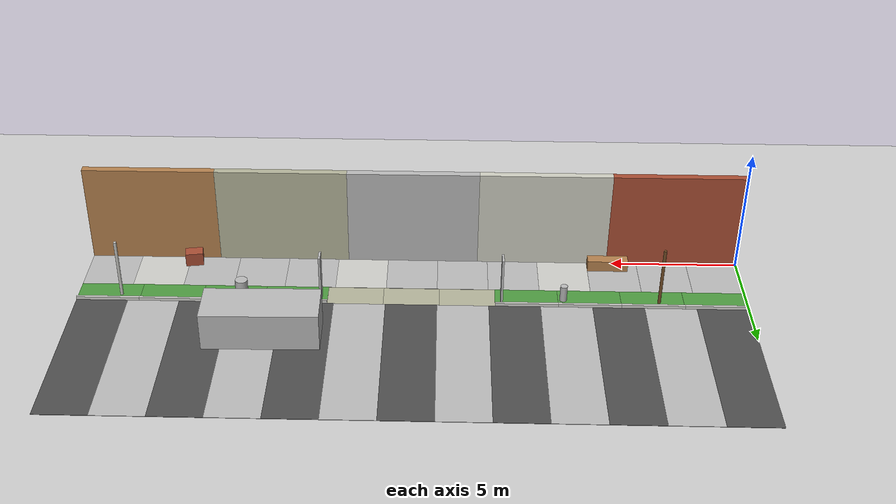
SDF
<?xml version="1.0" ?>
<sdf version="1.6">
  <world name="marc_sidewalk_driveway">

    <include>
      <uri>model://sun</uri>
    </include>

    <include>
      <uri>model://ground_plane</uri>
    </include>

    <physics type="ode">
      <max_step_size>0.001</max_step_size>
      <real_time_factor>1</real_time_factor>
      <real_time_update_rate>1000</real_time_update_rate>
    </physics>

    <model name="walkway">
      <static>true</static>
      <link name="link">
        <collision name="collision">
          <pose>13 1.0 0.01 0 0 0</pose>
          <geometry><box><size>26 2.0 0.02</size></box></geometry>
        </collision>

        <visual name="w01"><pose>1 1.0 0.011 0 0 0</pose><geometry><box><size>2 2.0 0.02</size></box></geometry>
          <material><script><uri>file://media/materials/scripts/gazebo.material</uri><name>Gazebo/Pedestrian</name></script></material></visual>
        <visual name="w02"><pose>3 1.0 0.011 0 0 0</pose><geometry><box><size>2 2.0 0.02</size></box></geometry>
          <material><script><uri>file://media/materials/scripts/gazebo.material</uri><name>Gazebo/Steps</name></script></material></visual>
        <visual name="w03"><pose>5 1.0 0.011 0 0 0</pose><geometry><box><size>2 2.0 0.02</size></box></geometry>
          <material><script><uri>file://media/materials/scripts/gazebo.material</uri><name>Gazebo/Pedestrian</name></script></material></visual>
        <visual name="w04"><pose>7 1.0 0.011 0 0 0</pose><geometry><box><size>2 2.0 0.02</size></box></geometry>
          <material><script><uri>file://media/materials/scripts/gazebo.material</uri><name>Gazebo/CeilingTiled</name></script></material></visual>
        <visual name="w05"><pose>9 1.0 0.011 0 0 0</pose><geometry><box><size>2 2.0 0.02</size></box></geometry>
          <material><script><uri>file://media/materials/scripts/gazebo.material</uri><name>Gazebo/Pedestrian</name></script></material></visual>
        <visual name="w06"><pose>11 1.0 0.011 0 0 0</pose><geometry><box><size>2 2.0 0.02</size></box></geometry>
          <material><script><uri>file://media/materials/scripts/gazebo.material</uri><name>Gazebo/Steps</name></script></material></visual>
        <visual name="w07"><pose>13 1.0 0.011 0 0 0</pose><geometry><box><size>2 2.0 0.02</size></box></geometry>
          <material><script><uri>file://media/materials/scripts/gazebo.material</uri><name>Gazebo/Pedestrian</name></script></material></visual>
        <visual name="w08"><pose>15 1.0 0.011 0 0 0</pose><geometry><box><size>2 2.0 0.02</size></box></geometry>
          <material><script><uri>file://media/materials/scripts/gazebo.material</uri><name>Gazebo/CeilingTiled</name></script></material></visual>
        <visual name="w09"><pose>17 1.0 0.011 0 0 0</pose><geometry><box><size>2 2.0 0.02</size></box></geometry>
          <material><script><uri>file://media/materials/scripts/gazebo.material</uri><name>Gazebo/Pedestrian</name></script></material></visual>
        <visual name="w10"><pose>19 1.0 0.011 0 0 0</pose><geometry><box><size>2 2.0 0.02</size></box></geometry>
          <material><script><uri>file://media/materials/scripts/gazebo.material</uri><name>Gazebo/Steps</name></script></material></visual>
        <visual name="w11"><pose>21 1.0 0.011 0 0 0</pose><geometry><box><size>2 2.0 0.02</size></box></geometry>
          <material><script><uri>file://media/materials/scripts/gazebo.material</uri><name>Gazebo/Pedestrian</name></script></material></visual>
        <visual name="w12"><pose>23 1.0 0.011 0 0 0</pose><geometry><box><size>2 2.0 0.02</size></box></geometry>
          <material><script><uri>file://media/materials/scripts/gazebo.material</uri><name>Gazebo/CeilingTiled</name></script></material></visual>
        <visual name="w13"><pose>25 1.0 0.011 0 0 0</pose><geometry><box><size>2 2.0 0.02</size></box></geometry>
          <material><script><uri>file://media/materials/scripts/gazebo.material</uri><name>Gazebo/Pedestrian</name></script></material></visual>
      </link>
    </model>

    <!-- ==== BUFFER ZONE ==== 1.0 m of grass, split either side of the cut -->
    <model name="buffer_zone_west">
      <static>true</static>
      <link name="link">
        <collision name="collision"><pose>4.875 2.5 0.01 0 0 0</pose>
          <geometry><box><size>9.75 1.0 0.02</size></box></geometry></collision>
        <visual name="bw1"><pose>1.22 2.5 0.011 0 0 0</pose><geometry><box><size>2.44 1.0 0.02</size></box></geometry>
          <material><script><uri>file://media/materials/scripts/gazebo.material</uri><name>Gazebo/Grass</name></script></material></visual>
        <visual name="bw2"><pose>3.66 2.5 0.011 0 0 0</pose><geometry><box><size>2.44 1.0 0.02</size></box></geometry>
          <material><script><uri>file://media/materials/scripts/gazebo.material</uri><name>Gazebo/Grass</name></script></material></visual>
        <visual name="bw3"><pose>6.09 2.5 0.011 0 0 0</pose><geometry><box><size>2.44 1.0 0.02</size></box></geometry>
          <material><script><uri>file://media/materials/scripts/gazebo.material</uri><name>Gazebo/Grass</name></script></material></visual>
        <visual name="bw4"><pose>8.53 2.5 0.011 0 0 0</pose><geometry><box><size>2.44 1.0 0.02</size></box></geometry>
          <material><script><uri>file://media/materials/scripts/gazebo.material</uri><name>Gazebo/Grass</name></script></material></visual>
      </link>
    </model>

    <model name="buffer_zone_east">
      <static>true</static>
      <link name="link">
        <collision name="collision"><pose>21.125 2.5 0.01 0 0 0</pose>
          <geometry><box><size>9.75 1.0 0.02</size></box></geometry></collision>
        <visual name="be1"><pose>17.47 2.5 0.011 0 0 0</pose><geometry><box><size>2.44 1.0 0.02</size></box></geometry>
          <material><script><uri>file://media/materials/scripts/gazebo.material</uri><name>Gazebo/Grass</name></script></material></visual>
        <visual name="be2"><pose>19.91 2.5 0.011 0 0 0</pose><geometry><box><size>2.44 1.0 0.02</size></box></geometry>
          <material><script><uri>file://media/materials/scripts/gazebo.material</uri><name>Gazebo/Grass</name></script></material></visual>
        <visual name="be3"><pose>22.34 2.5 0.011 0 0 0</pose><geometry><box><size>2.44 1.0 0.02</size></box></geometry>
          <material><script><uri>file://media/materials/scripts/gazebo.material</uri><name>Gazebo/Grass</name></script></material></visual>
        <visual name="be4"><pose>24.78 2.5 0.011 0 0 0</pose><geometry><box><size>2.44 1.0 0.02</size></box></geometry>
          <material><script><uri>file://media/materials/scripts/gazebo.material</uri><name>Gazebo/Grass</name></script></material></visual>
      </link>
    </model>

    <model name="curb_west">
      <static>true</static>
      <link name="link">
        <collision name="collision"><pose>4.875 3.05 0.075 0 0 0</pose>
          <geometry><box><size>9.75 0.1 0.15</size></box></geometry></collision>
        <visual name="cw1"><pose>1.22 3.05 0.075 0 0 0</pose><geometry><box><size>2.44 0.1 0.15</size></box></geometry>
          <material><script><uri>file://media/materials/scripts/gazebo.material</uri><name>Gazebo/CeilingTiled</name></script></material></visual>
        <visual name="cw2"><pose>3.66 3.05 0.075 0 0 0</pose><geometry><box><size>2.44 0.1 0.15</size></box></geometry>
          <material><script><uri>file://media/materials/scripts/gazebo.material</uri><name>Gazebo/CeilingTiled</name></script></material></visual>
        <visual name="cw3"><pose>6.09 3.05 0.075 0 0 0</pose><geometry><box><size>2.44 0.1 0.15</size></box></geometry>
          <material><script><uri>file://media/materials/scripts/gazebo.material</uri><name>Gazebo/CeilingTiled</name></script></material></visual>
        <visual name="cw4"><pose>8.53 3.05 0.075 0 0 0</pose><geometry><box><size>2.44 0.1 0.15</size></box></geometry>
          <material><script><uri>file://media/materials/scripts/gazebo.material</uri><name>Gazebo/CeilingTiled</name></script></material></visual>
      </link>
    </model>

    <model name="curb_east">
      <static>true</static>
      <link name="link">
        <collision name="collision"><pose>21.125 3.05 0.075 0 0 0</pose>
          <geometry><box><size>9.75 0.1 0.15</size></box></geometry></collision>
        <visual name="ce1"><pose>17.47 3.05 0.075 0 0 0</pose><geometry><box><size>2.44 0.1 0.15</size></box></geometry>
          <material><script><uri>file://media/materials/scripts/gazebo.material</uri><name>Gazebo/CeilingTiled</name></script></material></visual>
        <visual name="ce2"><pose>19.91 3.05 0.075 0 0 0</pose><geometry><box><size>2.44 0.1 0.15</size></box></geometry>
          <material><script><uri>file://media/materials/scripts/gazebo.material</uri><name>Gazebo/CeilingTiled</name></script></material></visual>
        <visual name="ce3"><pose>22.34 3.05 0.075 0 0 0</pose><geometry><box><size>2.44 0.1 0.15</size></box></geometry>
          <material><script><uri>file://media/materials/scripts/gazebo.material</uri><name>Gazebo/CeilingTiled</name></script></material></visual>
        <visual name="ce4"><pose>24.78 3.05 0.075 0 0 0</pose><geometry><box><size>2.44 0.1 0.15</size></box></geometry>
          <material><script><uri>file://media/materials/scripts/gazebo.material</uri><name>Gazebo/CeilingTiled</name></script></material></visual>
      </link>
    </model>

    <model name="driveway_apron">
      <static>true</static>
      <link name="link">
        <collision name="collision"><pose>13 2.55 0.005 0 0 0</pose>
          <geometry><box><size>6.5 1.1 0.01</size></box></geometry></collision>
        <visual name="da1"><pose>10.83 2.55 0.006 0 0 0</pose><geometry><box><size>2.17 1.1 0.01</size></box></geometry>
          <material><script><uri>file://media/materials/scripts/gazebo.material</uri><name>Gazebo/Residential</name></script></material></visual>
        <visual name="da2"><pose>13 2.55 0.006 0 0 0</pose><geometry><box><size>2.17 1.1 0.01</size></box></geometry>
          <material><script><uri>file://media/materials/scripts/gazebo.material</uri><name>Gazebo/Residential</name></script></material></visual>
        <visual name="da3"><pose>15.17 2.55 0.006 0 0 0</pose><geometry><box><size>2.17 1.1 0.01</size></box></geometry>
          <material><script><uri>file://media/materials/scripts/gazebo.material</uri><name>Gazebo/Residential</name></script></material></visual>
      </link>
    </model>

    <!-- ==== ROADWAY ==== context slab beyond the curb, tiled and alternating -->
    <model name="roadway">
      <static>true</static>
      <link name="link">
        <collision name="collision"><pose>13 6.55 0.01 0 0 0</pose>
          <geometry><box><size>26 6.9 0.02</size></box></geometry></collision>
        <visual name="r01"><pose>1 6.55 0.011 0 0 0</pose><geometry><box><size>2 6.9 0.02</size></box></geometry>
          <material><script><uri>file://media/materials/scripts/gazebo.material</uri><name>Gazebo/Road</name></script></material></visual>
        <visual name="r02"><pose>3 6.55 0.011 0 0 0</pose><geometry><box><size>2 6.9 0.02</size></box></geometry>
          <material><script><uri>file://media/materials/scripts/gazebo.material</uri><name>Gazebo/Motorway</name></script></material></visual>
        <visual name="r03"><pose>5 6.55 0.011 0 0 0</pose><geometry><box><size>2 6.9 0.02</size></box></geometry>
          <material><script><uri>file://media/materials/scripts/gazebo.material</uri><name>Gazebo/Road</name></script></material></visual>
        <visual name="r04"><pose>7 6.55 0.011 0 0 0</pose><geometry><box><size>2 6.9 0.02</size></box></geometry>
          <material><script><uri>file://media/materials/scripts/gazebo.material</uri><name>Gazebo/Motorway</name></script></material></visual>
        <visual name="r05"><pose>9 6.55 0.011 0 0 0</pose><geometry><box><size>2 6.9 0.02</size></box></geometry>
          <material><script><uri>file://media/materials/scripts/gazebo.material</uri><name>Gazebo/Road</name></script></material></visual>
        <visual name="r06"><pose>11 6.55 0.011 0 0 0</pose><geometry><box><size>2 6.9 0.02</size></box></geometry>
          <material><script><uri>file://media/materials/scripts/gazebo.material</uri><name>Gazebo/Motorway</name></script></material></visual>
        <visual name="r07"><pose>13 6.55 0.011 0 0 0</pose><geometry><box><size>2 6.9 0.02</size></box></geometry>
          <material><script><uri>file://media/materials/scripts/gazebo.material</uri><name>Gazebo/Road</name></script></material></visual>
        <visual name="r08"><pose>15 6.55 0.011 0 0 0</pose><geometry><box><size>2 6.9 0.02</size></box></geometry>
          <material><script><uri>file://media/materials/scripts/gazebo.material</uri><name>Gazebo/Motorway</name></script></material></visual>
        <visual name="r09"><pose>17 6.55 0.011 0 0 0</pose><geometry><box><size>2 6.9 0.02</size></box></geometry>
          <material><script><uri>file://media/materials/scripts/gazebo.material</uri><name>Gazebo/Road</name></script></material></visual>
        <visual name="r10"><pose>19 6.55 0.011 0 0 0</pose><geometry><box><size>2 6.9 0.02</size></box></geometry>
          <material><script><uri>file://media/materials/scripts/gazebo.material</uri><name>Gazebo/Motorway</name></script></material></visual>
        <visual name="r11"><pose>21 6.55 0.011 0 0 0</pose><geometry><box><size>2 6.9 0.02</size></box></geometry>
          <material><script><uri>file://media/materials/scripts/gazebo.material</uri><name>Gazebo/Road</name></script></material></visual>
        <visual name="r12"><pose>23 6.55 0.011 0 0 0</pose><geometry><box><size>2 6.9 0.02</size></box></geometry>
          <material><script><uri>file://media/materials/scripts/gazebo.material</uri><name>Gazebo/Motorway</name></script></material></visual>
        <visual name="r13"><pose>25 6.55 0.011 0 0 0</pose><geometry><box><size>2 6.9 0.02</size></box></geometry>
          <material><script><uri>file://media/materials/scripts/gazebo.material</uri><name>Gazebo/Road</name></script></material></visual>
      </link>
    </model>

    <model name="building_wall">
      <static>true</static>
      <link name="link">
        <collision name="collision"><pose>13 -0.15 2.0 0 0 0</pose>
          <geometry><box><size>26 0.3 4.0</size></box></geometry></collision>
        <visual name="f1"><pose>2.6 -0.15 2.0 0 0 0</pose><geometry><box><size>5.2 0.3 4.0</size></box></geometry>
          <material><script><uri>file://media/materials/scripts/gazebo.material</uri><name>Gazebo/Bricks</name></script></material></visual>
        <visual name="f2"><pose>7.8 -0.15 2.0 0 0 0</pose><geometry><box><size>5.2 0.3 4.0</size></box></geometry>
          <material><script><uri>file://media/materials/scripts/gazebo.material</uri><name>Gazebo/PaintedWall</name></script></material></visual>
        <visual name="f3"><pose>13 -0.15 2.0 0 0 0</pose><geometry><box><size>5.2 0.3 4.0</size></box></geometry>
          <material><script><uri>file://media/materials/scripts/gazebo.material</uri><name>Gazebo/BuildingFrame</name></script></material></visual>
        <visual name="f4"><pose>18.2 -0.15 2.0 0 0 0</pose><geometry><box><size>5.2 0.3 4.0</size></box></geometry>
          <material><script><uri>file://media/materials/scripts/gazebo.material</uri><name>Gazebo/Residential</name></script></material></visual>
        <visual name="f5"><pose>23.4 -0.15 2.0 0 0 0</pose><geometry><box><size>5.2 0.3 4.0</size></box></geometry>
          <material><script><uri>file://media/materials/scripts/gazebo.material</uri><name>Gazebo/Wood</name></script></material></visual>
      </link>
    </model>

    <model name="pole_w"><static>true</static><pose>3.4 2.72 1.22 0 0 0</pose>
      <link name="l"><collision name="c"><geometry><cylinder><radius>0.06</radius><length>2.4</length></cylinder></geometry></collision>
        <visual name="v"><geometry><cylinder><radius>0.06</radius><length>2.4</length></cylinder></geometry>
          <material><script><uri>file://media/materials/scripts/gazebo.material</uri><name>Gazebo/Trunk</name></script></material></visual></link></model>

    <model name="bench_w"><static>true</static><pose>5.2 0.36 0.245 0 0 0</pose>
      <link name="l"><collision name="c"><geometry><box><size>1.6 0.45 0.45</size></box></geometry></collision>
        <visual name="v"><geometry><box><size>1.6 0.45 0.45</size></box></geometry>
          <material><script><uri>file://media/materials/scripts/gazebo.material</uri><name>Gazebo/Wood</name></script></material></visual></link></model>

    <model name="hydrant"><static>true</static><pose>7.1 2.62 0.345 0 0 0</pose>
      <link name="l"><collision name="c"><geometry><cylinder><radius>0.14</radius><length>0.65</length></cylinder></geometry></collision>
        <visual name="v"><geometry><cylinder><radius>0.14</radius><length>0.65</length></cylinder></geometry>
          <material><script><uri>file://media/materials/scripts/gazebo.material</uri><name>Gazebo/Steps</name></script></material></visual></link></model>

    <!-- signs flanking the driveway cut == the strongest place-signature on
         the route, and the thing a returning pass should recognise -->
    <model name="sign_dw_west"><static>true</static><pose>9.5 2.75 1.02 0 0 0</pose>
      <link name="l"><collision name="c"><geometry><box><size>0.08 0.5 2.0</size></box></geometry></collision>
        <visual name="v"><geometry><box><size>0.08 0.5 2.0</size></box></geometry>
          <material><script><uri>file://media/materials/scripts/gazebo.material</uri><name>Gazebo/Runway</name></script></material></visual></link></model>

    <model name="sign_dw_east"><static>true</static><pose>16.5 2.75 1.02 0 0 0</pose>
      <link name="l"><collision name="c"><geometry><box><size>0.08 0.5 2.0</size></box></geometry></collision>
        <visual name="v"><geometry><box><size>0.08 0.5 2.0</size></box></geometry>
          <material><script><uri>file://media/materials/scripts/gazebo.material</uri><name>Gazebo/Primary</name></script></material></visual></link></model>

    <model name="bin_e"><static>true</static><pose>19.6 2.6 0.37 0 0 0.4</pose>
      <link name="l"><collision name="c"><geometry><cylinder><radius>0.24</radius><length>0.7</length></cylinder></geometry></collision>
        <visual name="v"><geometry><cylinder><radius>0.24</radius><length>0.7</length></cylinder></geometry>
          <material><script><uri>file://media/materials/scripts/gazebo.material</uri><name>Gazebo/Motorway</name></script></material></visual></link></model>

    <model name="planter_e"><static>true</static><pose>21.8 0.38 0.29 0 0 0.15</pose>
      <link name="l"><collision name="c"><geometry><box><size>0.7 0.5 0.55</size></box></geometry></collision>
        <visual name="v"><geometry><box><size>0.7 0.5 0.55</size></box></geometry>
          <material><script><uri>file://media/materials/scripts/gazebo.material</uri><name>Gazebo/Bricks</name></script></material></visual></link></model>

    <model name="pole_e"><static>true</static><pose>24.3 2.7 1.22 0 0 0</pose>
      <link name="l"><collision name="c"><geometry><cylinder><radius>0.06</radius><length>2.4</length></cylinder></geometry></collision>
        <visual name="v"><geometry><cylinder><radius>0.06</radius><length>2.4</length></cylinder></geometry>
          <material><script><uri>file://media/materials/scripts/gazebo.material</uri><name>Gazebo/CeilingTiled</name></script></material></visual></link></model>

    <!-- parked car on the roadway: large, distinctive, and only visible from
         part of the route, which makes it a useful place signature -->
    <model name="parked_car"><static>true</static><pose>18.5 5.2 0.75 0 0 0.015</pose>
      <link name="l"><collision name="c"><geometry><box><size>4.4 1.8 1.5</size></box></geometry></collision>
        <visual name="v"><geometry><box><size>4.4 1.8 1.5</size></box></geometry>
          <material><script><uri>file://media/materials/scripts/gazebo.material</uri><name>Gazebo/PioneerBody</name></script></material></visual></link></model>

    <scene><ambient>0.5 0.5 0.5 1</ambient><background>0.7 0.75 0.8 1</background><shadows>false</shadows></scene>

    <gui>
      <camera name="user_camera">
        <pose>-1 -9 7 0 0.374 0.666</pose>
      </camera>
    </gui>

  </world>
</sdf>
